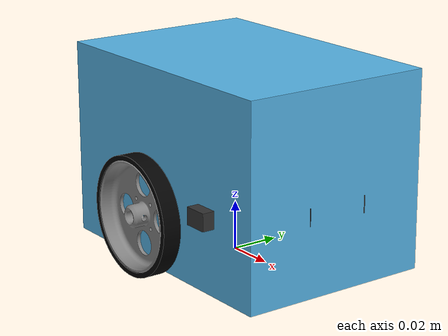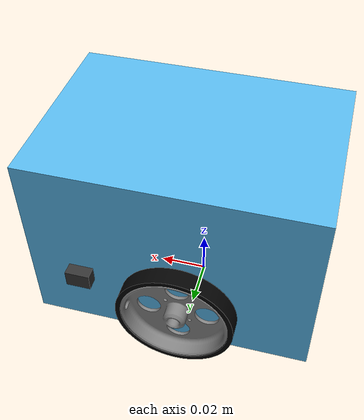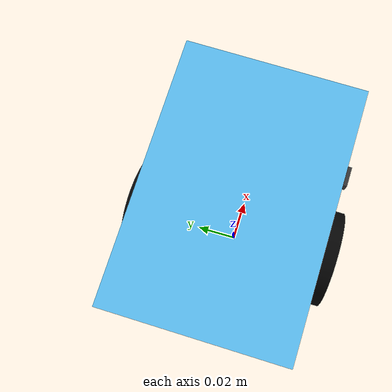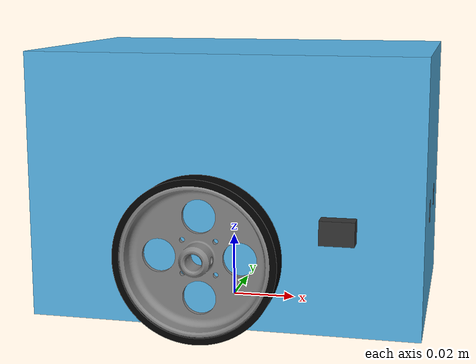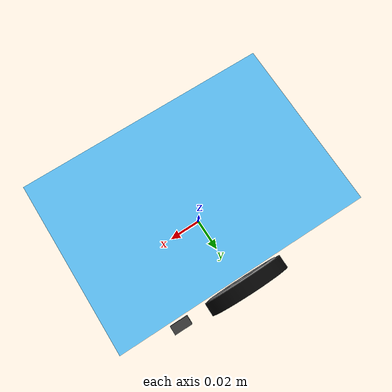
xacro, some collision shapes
<?xml version="1.0"?>
<robot name="raspimouse_on_gazebo"
       xmlns:sensor="http://playerstage.sourceforge.net/gazebo/xmlschema/#sensor"
       xmlns:controller="http://playerstage.sourceforge.net/gazebo/xmlschema/#controller"
       xmlns:interface="http://playerstage.sourceforge.net/gazebo/xmlschema/#interface"
       xmlns:xacro="http://ros.org/wiki/xacro">

  <xacro:arg name="lidar" default="none" />
  <xacro:arg name="lidar_frame" default="laser" />
  <xacro:arg name="laser_visual" default="true"/>
  <xacro:arg name="camera" default="false" />
  <xacro:arg name="camera_visual" default="false"/>
  <xacro:arg name="gazebo_plugin" default="false" />
  <xacro:arg name="tf" default="true" />
  <xacro:arg name="jointstate" default="true" />
  <xacro:arg name="robot_namespace" default="/" />
  <xacro:arg name="diffdrive_namespace" default="/" />
  <xacro:arg name="camera_namespace" default="/" />
  <xacro:arg name="sensor_namespace" default="raspimouse_on_gazebo" />

  <xacro:include filename="$(find raspimouse_description)/urdf/common.xacro" />
  <xacro:include filename="$(find raspimouse_description)/urdf/body/body.urdf.xacro" />
  <xacro:include filename="$(find raspimouse_description)/urdf/body/option.urdf.xacro" />
  <xacro:include filename="$(find raspimouse_description)/urdf/wheel/wheel.urdf.xacro" />
  <xacro:include filename="$(find raspimouse_description)/urdf/wheel/diffdrive.gazebo.xacro" />
  <xacro:include filename="$(find raspimouse_description)/urdf/sensors/lightsens.urdf.xacro" />
  <xacro:include filename="$(find raspimouse_description)/urdf/sensors/lidar.urdf.xacro" />
  <xacro:include filename="$(find raspimouse_description)/urdf/camera/camera.urdf.xacro" />

  <!-- =============== Link & Joint =============== -->
  <!-- Base -->
  <link name="base_footprint" />

  <xacro:base parent="base_footprint">
    <origin xyz="0 0 0.00185" />
  </xacro:base>

  <!-- Wheel -->
  <xacro:wheel prefix="right" parent="base_link">
    <origin xyz="0 -0.0425 0.02215" rpy="1.57 0 0" />
    <axis xyz="0 0 -1" />
  </xacro:wheel>
  <xacro:wheel prefix="left" parent="base_link">
    <origin xyz="0 0.0425 0.02215" rpy="-1.57 0 0" />
    <axis xyz="0 0 1" />
  </xacro:wheel>

  <!-- Sensors -->
  <link name="lightsensors" />
  <joint name="lightsensors_joint" type="fixed">
    <parent link="base_link" />
    <child link="lightsensors" />
  </joint>

  <xacro:light_sensor prefix="rf" parent="lightsensors">
    <origin xyz="0.04 -0.045 0.032" rpy="0 0 0" />
  </xacro:light_sensor>

  <xacro:light_sensor prefix="rs" parent="lightsensors">
    <origin xyz="0.059 -0.01 0.032" rpy="0 0 -1.04" />
  </xacro:light_sensor>

  <xacro:light_sensor prefix="ls" parent="lightsensors">
    <origin xyz="0.059 0.01 0.032" rpy="0 0 1.04" />
  </xacro:light_sensor>

  <xacro:light_sensor prefix="lf" parent="lightsensors">
    <origin xyz="0.04 0.045 0.032" rpy="0 0 0" />
  </xacro:light_sensor>

  <xacro:if value="${'$(arg lidar)' == 'urg'}">
    <xacro:lidar_urg_mount prefix="urg_mount" parent="base_link">
      <origin xyz="0 0 0" rpy="0 0 0" />
    </xacro:lidar_urg_mount>
    <xacro:lidar_urg_sensor sensor_link_name="$(arg lidar_frame)" parent="urg_mount_link">
      <origin xyz="0.0 0.0 0.14060" rpy="0 0 0" />
    </xacro:lidar_urg_sensor>
  </xacro:if>

  <xacro:if value="$(arg camera)">
    <xacro:camera_mount prefix="camera_mount" parent="base_link">
      <origin rpy="0 0 0" xyz="0.085 0 0.0493" />
    </xacro:camera_mount>
    <xacro:webcam prefix="webcam" parent="camera_mount_link">
      <origin xyz="0 0 0.01" rpy="0 0 0" />
    </xacro:webcam>
  </xacro:if>

  <!-- =============== Gazebo =============== -->

  <xacro:if value="$(arg gazebo_plugin)">
    <gazebo>
      <plugin name="gazebo_ros_control" filename="libgazebo_ros_control.so">
        <robotNamespace>$(arg robot_namespace)</robotNamespace>
      </plugin>
    </gazebo>

    <!-- Sensors -->
    <xacro:lightsensor_gazebo prefix="rf" base_rad="0"
      rad_range="0.3" min_range="0.01" max_range="0.6"
      robot_namespace="$(arg sensor_namespace)"
      robotdescription_namespace="$(arg robot_namespace)" />
    <xacro:lightsensor_gazebo prefix="rs" base_rad="-1.04"
      rad_range="0.3" min_range="0.01" max_range="0.6"
      robot_namespace="$(arg sensor_namespace)"
      robotdescription_namespace="$(arg robot_namespace)" />
    <xacro:lightsensor_gazebo prefix="ls" base_rad="1.04"
      rad_range="0.3" min_range="0.01" max_range="0.6"
      robot_namespace="$(arg sensor_namespace)"
      robotdescription_namespace="$(arg robot_namespace)" />
    <xacro:lightsensor_gazebo prefix="lf" base_rad="0"
      rad_range="0.3" min_range="0.01" max_range="0.6"
      robot_namespace="$(arg sensor_namespace)"
      robotdescription_namespace="$(arg robot_namespace)" />

    <xacro:if value="${'$(arg lidar)' == 'urg'}">
      <xacro:lidar_gazebo sensor_link_name="$(arg lidar_frame)" base_rad="0" rad_range="4.71" min_range="0.10" max_range="5.6" />
    </xacro:if>

    <xacro:if value="$(arg camera)">
      <xacro:camera_gazebo camera_name="webcam" camera_link="webcam_link"
        robot_namespace="$(arg camera_namespace)"
        robotdescription_namespace="/" />
    </xacro:if>

    <!-- DiffDriveController -->
    <xacro:diffdrive_gazebo publish_tf="$(arg tf)" publish_jointstate="$(arg jointstate)"
      robot_namespace="$(arg diffdrive_namespace)" />
  </xacro:if>

  <raspimouse_on_gazebo/>
</robot>

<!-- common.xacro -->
<robot name="common" xmlns:xacro="http://ros.org/wiki/xacro">

  <xacro:property name="wheel_radius" value="0.024" />
  <xacro:property name="wheel_length" value="0.010" />
  <xacro:property name="wheel_mass" value="0.0113" />
  <xacro:property name="wheel_separation" value="0.0935" />

  <!-- PROPERTY LIST -->
  <!-- All units in m-kg-s-radians unit system -->
  <xacro:property name="M_PI" value="3.1415926535897932" />

  <!-- Inertial macros. Units are kg*m^2 -->
  <xacro:macro name="box_inertia" params="m x y z">
    <inertia ixx="${m*(y*y+z*z)/12}" ixy = "0" ixz = "0"
             iyy="${m*(z*z+x*x)/12}" iyz = "0"
             izz="${m*(x*x+y*y)/12}" />
  </xacro:macro>
  <xacro:macro name="cylinder_inertia" params="m r h">
    <inertia ixx="${m*(3*r*r+h*h)/12}" ixy="0" ixz="0"
             iyy="${m*(3*r*r+h*h)/12}" iyz="0"
             izz="${m*r*r/2}" />
  </xacro:macro>
  <xacro:macro name="sphere_inertia" params="m r">
    <inertia ixx="${m*r*r*2/5}" ixy="0" ixz="0"
             iyy="${m*r*r*2/5}" iyz="0"
             izz="${m*r*r*2/5}" />
  </xacro:macro>

</robot>

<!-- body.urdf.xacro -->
<robot xmlns:xacro="http://ros.org/wiki/xacro">

  <xacro:include filename="$(find raspimouse_description)/urdf/body/body.gazebo.xacro" />

  <xacro:macro name="base" params="parent *joint_origin">
    <joint name="base_joint" type="fixed">
      <xacro:insert_block name="joint_origin" />
      <parent link="${parent}" />
      <child link="base_link" />
    </joint>
    <link name="base_link">
      <visual>
        <geometry>
          <mesh filename="package://raspimouse_description/meshes/dae/body/raspimouse_body.dae" />
        </geometry>
      </visual>
      <collision>
        <origin rpy="0 0 0" xyz="0.005 0 0.040" />
        <geometry>
          <box size="0.117 0.080 0.080" />
        </geometry>
      </collision>
      <inertial>
        <mass value="0.7186" />
        <origin xyz="-0.005075 0.0 0.03" />
        <xacro:box_inertia m="0.7" x="0.1" y="0.08" z="0.08" />
      </inertial>
    </link>

  </xacro:macro>
</robot>

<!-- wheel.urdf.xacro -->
<robot xmlns:xacro="http://ros.org/wiki/xacro">

  <xacro:include filename="$(find raspimouse_description)/urdf/common.xacro" />

  <xacro:macro name="wheel" params="prefix parent *joint_origin *joint_axis">
    <joint name="${prefix}_wheel_joint" type="continuous">
      <xacro:insert_block name="joint_origin" />
      <xacro:insert_block name="joint_axis" />
      <parent link="${parent}" />
      <child link="${prefix}_wheel" />
      <limit effort="70" velocity="15" />
      <safety_controller k_velocity="10" />
      <dynamics damping="1.0" friction="1.0" />
    </joint>
    <link name="${prefix}_wheel">
      <visual>
        <geometry>
          <mesh filename="package://raspimouse_description/meshes/dae/wheel/raspimouse_wheel.dae" />
        </geometry>
      </visual>
      <collision>
        <origin xyz="0 0 0.003" />
        <geometry>
          <cylinder radius="${wheel_radius}" length="${wheel_length}" />
        </geometry>
        <surface>
          <friction>
            <ode>
              <mu>2</mu>
              <mu2>2</mu2>
              <slip1>0</slip1>
              <slip2>0</slip2>
            </ode>
          </friction>
        </surface>
      </collision>
      <inertial>
        <origin xyz="-0.000107 0 0.002875" />
        <mass value="${wheel_mass}" />
        <inertia ixx="0.000002208187" ixy="0.000000000001" iyy="0.00000218412" ixz="0.000000004787" iyz="0.000000000003" izz="0.000004078299" />
      </inertial>
    </link>
  </xacro:macro>
</robot>

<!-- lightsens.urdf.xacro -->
<robot name="light_sensor" xmlns:xacro="http://ros.org/wiki/xacro">

  <xacro:include filename="$(find raspimouse_description)/urdf/common.xacro" />
  <xacro:include filename="$(find raspimouse_description)/urdf/sensors/lightsens.gazebo.xacro" />

  <xacro:macro name="light_sensor" params="prefix parent *joint_origin">
    <joint name="${prefix}_joint" type="fixed">
      <xacro:insert_block name="joint_origin" />
      <parent link="${parent}" />
      <child link="${prefix}_lightsensor_link" />
    </joint>

    <link name="${prefix}_lightsensor_link">
      <visual>
        <geometry>
          <box size="0.01 0.005 0.007" />
        </geometry>
        <material name="Gray">
          <color rgba="0.2 0.2 0.2 1" />
        </material>
      </visual>
      <inertial>
        <mass value="0.000001" />
        <origin xyz="0 0 0" />
        <inertia ixx="0.0001" ixy="0.0" ixz="0.0"
          iyy="0.0001" iyz="0.0"
          izz="0.0001" />
      </inertial>
    </link>
  </xacro:macro>
</robot>
